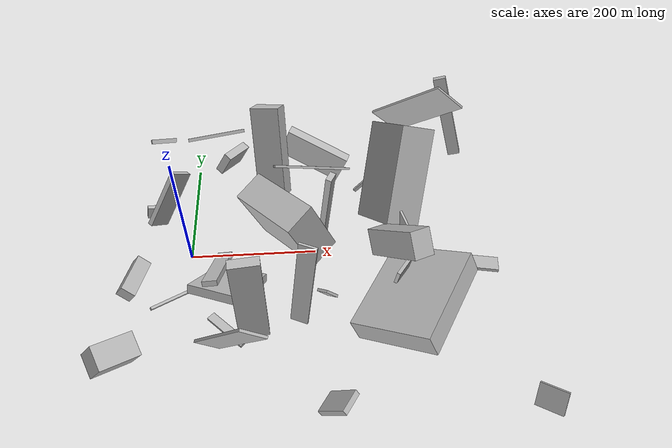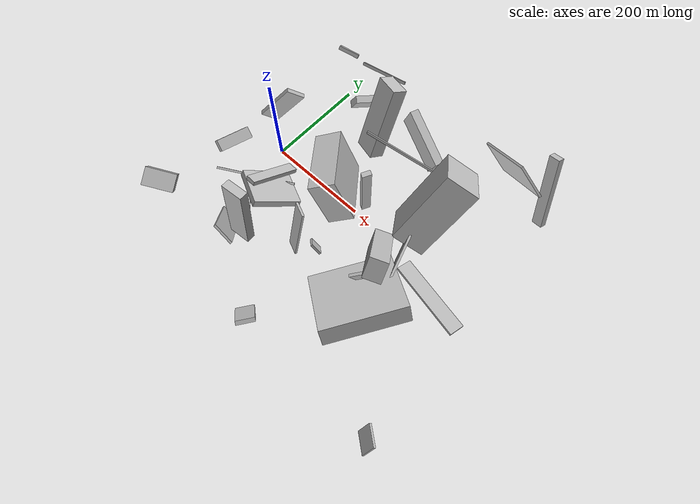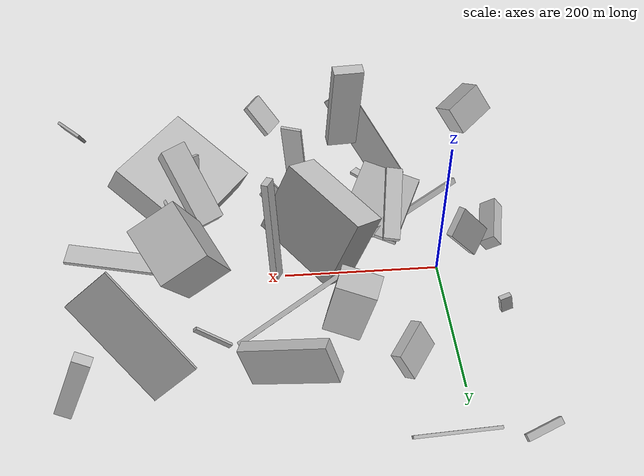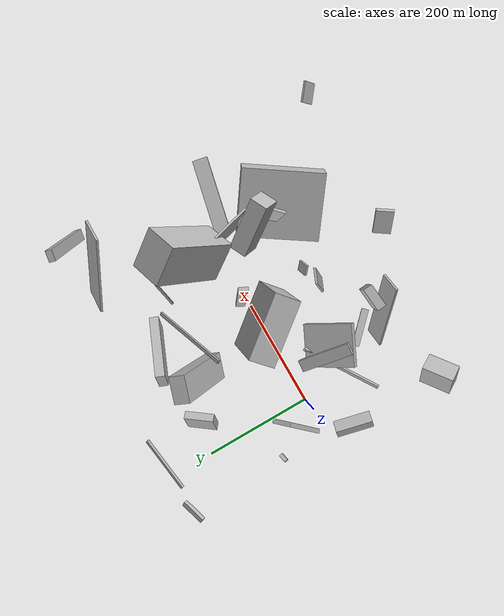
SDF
<sdf version="1.6">
 <world name="default">
  <scene>
   <sky><clouds><speed>12</speed></clouds></sky>
   <ambient>0.4 0.4 0.4 1</ambient>
   <background>0.7 0.7 0.7 1</background>
   <shadows>1</shadows>
  </scene>
  <gravity>0 0 -9.8066</gravity>
  <magnetic_field>6e-06 2.3e-05 -4.2e-05</magnetic_field>
  <physics default="0" name="default_physics" type="ode">
   <ode>
    <solver>
     <type>quick</type>
     <iters>10</iters>
     <sor>1.0</sor>
     <use_dynamic_moi_rescaling>0</use_dynamic_moi_rescaling>
    </solver>
    <constraints>
     <cfm>0</cfm>
     <erp>0.2</erp>
     <contact_max_correcting_vel>100</contact_max_correcting_vel>
     <contact_surface_layer>0.001</contact_surface_layer>
    </constraints>
   </ode>
   <max_step_size>0.004</max_step_size>
   <real_time_factor>1</real_time_factor>
   <real_time_update_rate>250</real_time_update_rate>
  </physics>
  <light name="sun" type="directional">
   <pose>0 0 10 0 0 0</pose>
   <diffuse>0.8 0.8 0.8 1</diffuse>
   <specular>0.2 0.2 0.2 1</specular>
   <attenuation>
    <range>1000</range>
    <constant>0.9</constant>
    <linear>0.01</linear>
    <quadratic>0.001</quadratic>
   </attenuation>
   <direction>-0.5 0.1 -0.9</direction>
  </light>
  <model name="building_1">
   <static>0</static>
   <pose>410.1766655089389 202.81658807472311 101.7610473603253 0.751700459458805 0.3752434939150048 -1.8534549909360527</pose>
   <link name="link">
    <gravity>0</gravity>
    <pose>0 0 33.0 0 0 0</pose>
    <collision name="collision"><geometry><box><size>4 145 66</size></box></geometry></collision>
    <visual name="visual">
     <cast_shadows>0</cast_shadows>
     <geometry><box><size>4 145 66</size></box></geometry>
     <material>
      <script>
       <uri>model://HANNAS_wall/materials/scripts</uri>
       <uri>model://HANNAS_wall/materials/textures</uri>
       <name>vrc/HANNAS_wall</name>
      </script>
     </material>
    </visual>
   </link>
  </model>
  <model name="building_2">
   <static>0</static>
   <pose>206.4595644968066 177.37334358911463 47.94452305633396 1.5395878755531411 -0.3615829813583825 2.779806486288705</pose>
   <link name="link">
    <gravity>0</gravity>
    <pose>0 0 8.5 0 0 0</pose>
    <collision name="collision"><geometry><box><size>113 55 17</size></box></geometry></collision>
    <visual name="visual">
     <cast_shadows>0</cast_shadows>
     <geometry><box><size>113 55 17</size></box></geometry>
     <material>
      <script>
       <uri>model://HANNAS_wall/materials/scripts</uri>
       <uri>model://HANNAS_wall/materials/textures</uri>
       <name>vrc/HANNAS_wall</name>
      </script>
     </material>
    </visual>
   </link>
  </model>
  <model name="building_3">
   <static>0</static>
   <pose>140.02040621811045 155.77633740275817 89.62797129582378 -0.4344583700434966 -1.1472960854905385 1.6490189733644838</pose>
   <link name="link">
    <gravity>0</gravity>
    <pose>0 0 14.5 0 0 0</pose>
    <collision name="collision"><geometry><box><size>150 48 29</size></box></geometry></collision>
    <visual name="visual">
     <cast_shadows>0</cast_shadows>
     <geometry><box><size>150 48 29</size></box></geometry>
     <material>
      <script>
       <uri>model://HANNAS_wall/materials/scripts</uri>
       <uri>model://HANNAS_wall/materials/textures</uri>
       <name>vrc/HANNAS_wall</name>
      </script>
     </material>
    </visual>
   </link>
  </model>
  <model name="building_4">
   <static>0</static>
   <pose>320.4477538518197 -103.05199190719752 57.67809142042819 0.9659858368067542 -1.2112348608841614 -1.6747936069642289</pose>
   <link name="link">
    <gravity>0</gravity>
    <pose>0 0 2.5 0 0 0</pose>
    <collision name="collision"><geometry><box><size>108 32 5</size></box></geometry></collision>
    <visual name="visual">
     <cast_shadows>0</cast_shadows>
     <geometry><box><size>108 32 5</size></box></geometry>
     <material>
      <script>
       <uri>model://HANNAS_wall/materials/scripts</uri>
       <uri>model://HANNAS_wall/materials/textures</uri>
       <name>vrc/HANNAS_wall</name>
      </script>
     </material>
    </visual>
   </link>
  </model>
  <model name="building_5">
   <static>0</static>
   <pose>311.68084722215303 86.59814180129734 94.12832271758646 0.7446950819506417 -0.896224018570689 1.2739654990725104</pose>
   <link name="link">
    <gravity>0</gravity>
    <pose>0 0 37.5 0 0 0</pose>
    <collision name="collision"><geometry><box><size>150 63 75</size></box></geometry></collision>
    <visual name="visual">
     <cast_shadows>0</cast_shadows>
     <geometry><box><size>150 63 75</size></box></geometry>
     <material>
      <script>
       <uri>model://HANNAS_wall/materials/scripts</uri>
       <uri>model://HANNAS_wall/materials/textures</uri>
       <name>vrc/HANNAS_wall</name>
      </script>
     </material>
    </visual>
   </link>
  </model>
  <model name="building_6">
   <static>0</static>
   <pose>40.029411137782404 -128.39249159855962 21.48075131810534 -0.20817195880316633 -1.556177250934765 2.5611073687964017</pose>
   <link name="link">
    <gravity>0</gravity>
    <pose>0 0 35.0 0 0 0</pose>
    <collision name="collision"><geometry><box><size>4 13 70</size></box></geometry></collision>
    <visual name="visual">
     <cast_shadows>0</cast_shadows>
     <geometry><box><size>4 13 70</size></box></geometry>
     <material>
      <script>
       <uri>model://HANNAS_wall/materials/scripts</uri>
       <uri>model://HANNAS_wall/materials/textures</uri>
       <name>vrc/HANNAS_wall</name>
      </script>
     </material>
    </visual>
   </link>
  </model>
  <model name="building_7">
   <static>0</static>
   <pose>56.73015071670308 -196.45990247015126 77.90717057149502 2.199697116662782 -0.33566573766555863 1.3617638254448001</pose>
   <link name="link">
    <gravity>0</gravity>
    <pose>0 0 20.0 0 0 0</pose>
    <collision name="collision"><geometry><box><size>4 145 40</size></box></geometry></collision>
    <visual name="visual">
     <cast_shadows>0</cast_shadows>
     <geometry><box><size>4 145 40</size></box></geometry>
     <material>
      <script>
       <uri>model://HANNAS_wall/materials/scripts</uri>
       <uri>model://HANNAS_wall/materials/textures</uri>
       <name>vrc/HANNAS_wall</name>
      </script>
     </material>
    </visual>
   </link>
  </model>
  <model name="building_8">
   <static>0</static>
   <pose>291.9219457160198 -199.82289337186964 51.11224072215849 1.386731385476837 -1.1134430895811633 2.7329680706579276</pose>
   <link name="link">
    <gravity>0</gravity>
    <pose>0 0 75.0 0 0 0</pose>
    <collision name="collision"><geometry><box><size>35 126 150</size></box></geometry></collision>
    <visual name="visual">
     <cast_shadows>0</cast_shadows>
     <geometry><box><size>35 126 150</size></box></geometry>
     <material>
      <script>
       <uri>model://HANNAS_wall/materials/scripts</uri>
       <uri>model://HANNAS_wall/materials/textures</uri>
       <name>vrc/HANNAS_wall</name>
      </script>
     </material>
    </visual>
   </link>
  </model>
  <model name="building_9">
   <static>0</static>
   <pose>-72.8227175996092 280.37058974282445 17.348477927814447 -2.4838180024402563 -0.22434401729041706 -2.811936929307097</pose>
   <link name="link">
    <gravity>0</gravity>
    <pose>0 0 4.0 0 0 0</pose>
    <collision name="collision"><geometry><box><size>46 9 8</size></box></geometry></collision>
    <visual name="visual">
     <cast_shadows>0</cast_shadows>
     <geometry><box><size>46 9 8</size></box></geometry>
     <material>
      <script>
       <uri>model://HANNAS_wall/materials/scripts</uri>
       <uri>model://HANNAS_wall/materials/textures</uri>
       <name>vrc/HANNAS_wall</name>
      </script>
     </material>
    </visual>
   </link>
  </model>
  <model name="building_10">
   <static>0</static>
   <pose>-74.39830758550104 -53.85644902332128 30.827618465846662 -3.001028212161163 -0.6583557725961992 2.841073868500483</pose>
   <link name="link">
    <gravity>0</gravity>
    <pose>0 0 9.5 0 0 0</pose>
    <collision name="collision"><geometry><box><size>23 68 19</size></box></geometry></collision>
    <visual name="visual">
     <cast_shadows>0</cast_shadows>
     <geometry><box><size>23 68 19</size></box></geometry>
     <material>
      <script>
       <uri>model://HANNAS_wall/materials/scripts</uri>
       <uri>model://HANNAS_wall/materials/textures</uri>
       <name>vrc/HANNAS_wall</name>
      </script>
     </material>
    </visual>
   </link>
  </model>
  <model name="building_11">
   <static>0</static>
   <pose>118.33916621269069 41.21335392567272 77.10700172031615 1.3894334169524971 -0.3544995005242855 0.7329239140828747</pose>
   <link name="link">
    <gravity>0</gravity>
    <pose>0 0 61.5 0 0 0</pose>
    <collision name="collision"><geometry><box><size>49 98 123</size></box></geometry></collision>
    <visual name="visual">
     <cast_shadows>0</cast_shadows>
     <geometry><box><size>49 98 123</size></box></geometry>
     <material>
      <script>
       <uri>model://HANNAS_wall/materials/scripts</uri>
       <uri>model://HANNAS_wall/materials/textures</uri>
       <name>vrc/HANNAS_wall</name>
      </script>
     </material>
    </visual>
   </link>
  </model>
  <model name="building_12">
   <static>0</static>
   <pose>101.18486912186852 -103.3536406107952 47.897972547975925 1.7274348405484574 -0.5093117737606114 -2.0885824008025375</pose>
   <link name="link">
    <gravity>0</gravity>
    <pose>0 0 39.5 0 0 0</pose>
    <collision name="collision"><geometry><box><size>93 13 79</size></box></geometry></collision>
    <visual name="visual">
     <cast_shadows>0</cast_shadows>
     <geometry><box><size>93 13 79</size></box></geometry>
     <material>
      <script>
       <uri>model://HANNAS_wall/materials/scripts</uri>
       <uri>model://HANNAS_wall/materials/textures</uri>
       <name>vrc/HANNAS_wall</name>
      </script>
     </material>
    </visual>
   </link>
  </model>
  <model name="building_13">
   <static>0</static>
   <pose>294.7332195591109 -37.49952797095264 67.18531787047023 0.8684036270239258 0.16247603672385613 0.4419379205668623</pose>
   <link name="link">
    <gravity>0</gravity>
    <pose>0 0 53.0 0 0 0</pose>
    <collision name="collision"><geometry><box><size>33 40 106</size></box></geometry></collision>
    <visual name="visual">
     <cast_shadows>0</cast_shadows>
     <geometry><box><size>33 40 106</size></box></geometry>
     <material>
      <script>
       <uri>model://HANNAS_wall/materials/scripts</uri>
       <uri>model://HANNAS_wall/materials/textures</uri>
       <name>vrc/HANNAS_wall</name>
      </script>
     </material>
    </visual>
   </link>
  </model>
  <model name="building_14">
   <static>0</static>
   <pose>221.3736865920556 6.308630984495318 90.49517857147227 1.4605573375541365 0.05211284212460683 -2.070695041275533</pose>
   <link name="link">
    <gravity>0</gravity>
    <pose>0 0 4.5 0 0 0</pose>
    <collision name="collision"><geometry><box><size>17 150 9</size></box></geometry></collision>
    <visual name="visual">
     <cast_shadows>0</cast_shadows>
     <geometry><box><size>17 150 9</size></box></geometry>
     <material>
      <script>
       <uri>model://HANNAS_wall/materials/scripts</uri>
       <uri>model://HANNAS_wall/materials/textures</uri>
       <name>vrc/HANNAS_wall</name>
      </script>
     </material>
    </visual>
   </link>
  </model>
  <model name="building_15">
   <static>0</static>
   <pose>203.6142091996626 122.25463227100008 69.8301415307585 0.49364237839310166 0.5679223689842848 2.225892388534747</pose>
   <link name="link">
    <gravity>0</gravity>
    <pose>0 0 2.0 0 0 0</pose>
    <collision name="collision"><geometry><box><size>6 150 4</size></box></geometry></collision>
    <visual name="visual">
     <cast_shadows>0</cast_shadows>
     <geometry><box><size>6 150 4</size></box></geometry>
     <material>
      <script>
       <uri>model://HANNAS_wall/materials/scripts</uri>
       <uri>model://HANNAS_wall/materials/textures</uri>
       <name>vrc/HANNAS_wall</name>
      </script>
     </material>
    </visual>
   </link>
  </model>
  <model name="building_16">
   <static>0</static>
   <pose>50.181570146301425 158.9498936225426 55.820216111224326 -1.9950455318157143 -1.0755203384988965 -0.2324146214717071</pose>
   <link name="link">
    <gravity>0</gravity>
    <pose>0 0 26.5 0 0 0</pose>
    <collision name="collision"><geometry><box><size>41 14 53</size></box></geometry></collision>
    <visual name="visual">
     <cast_shadows>0</cast_shadows>
     <geometry><box><size>41 14 53</size></box></geometry>
     <material>
      <script>
       <uri>model://HANNAS_wall/materials/scripts</uri>
       <uri>model://HANNAS_wall/materials/textures</uri>
       <name>vrc/HANNAS_wall</name>
      </script>
     </material>
    </visual>
   </link>
  </model>
  <model name="building_17">
   <static>0</static>
   <pose>209.9961445058392 -116.63216861856392 43.757064437038515 0.7910814051275935 -0.8406057621368179 -2.912479760437552</pose>
   <link name="link">
    <gravity>0</gravity>
    <pose>0 0 2.0 0 0 0</pose>
    <collision name="collision"><geometry><box><size>25 19 4</size></box></geometry></collision>
    <visual name="visual">
     <cast_shadows>0</cast_shadows>
     <geometry><box><size>25 19 4</size></box></geometry>
     <material>
      <script>
       <uri>model://HANNAS_wall/materials/scripts</uri>
       <uri>model://HANNAS_wall/materials/textures</uri>
       <name>vrc/HANNAS_wall</name>
      </script>
     </material>
    </visual>
   </link>
  </model>
  <model name="building_18">
   <static>0</static>
   <pose>297.6735596046923 125.34138264306367 32.49483947820881 1.6866058198011251 -0.7952646040385426 3.138701324303453</pose>
   <link name="link">
    <gravity>0</gravity>
    <pose>0 0 2.0 0 0 0</pose>
    <collision name="collision"><geometry><box><size>6 59 4</size></box></geometry></collision>
    <visual name="visual">
     <cast_shadows>0</cast_shadows>
     <geometry><box><size>6 59 4</size></box></geometry>
     <material>
      <script>
       <uri>model://HANNAS_wall/materials/scripts</uri>
       <uri>model://HANNAS_wall/materials/textures</uri>
       <name>vrc/HANNAS_wall</name>
      </script>
     </material>
    </visual>
   </link>
  </model>
  <model name="building_19">
   <static>0</static>
   <pose>107.7472707786414 -189.10518592710332 70.2514836512198 -0.015540531139245977 0.12044743077806301 1.6548470243667246</pose>
   <link name="link">
    <gravity>0</gravity>
    <pose>0 0 65.0 0 0 0</pose>
    <collision name="collision"><geometry><box><size>16 40 130</size></box></geometry></collision>
    <visual name="visual">
     <cast_shadows>0</cast_shadows>
     <geometry><box><size>16 40 130</size></box></geometry>
     <material>
      <script>
       <uri>model://HANNAS_wall/materials/scripts</uri>
       <uri>model://HANNAS_wall/materials/textures</uri>
       <name>vrc/HANNAS_wall</name>
      </script>
     </material>
    </visual>
   </link>
  </model>
  <model name="building_20">
   <static>0</static>
   <pose>361.30563329825435 -121.29421165351516 44.30576706570925 1.3486302131825656 -0.1854440218383157 -2.8157679816886256</pose>
   <link name="link">
    <gravity>0</gravity>
    <pose>0 0 75.0 0 0 0</pose>
    <collision name="collision"><geometry><box><size>4 39 150</size></box></geometry></collision>
    <visual name="visual">
     <cast_shadows>0</cast_shadows>
     <geometry><box><size>4 39 150</size></box></geometry>
     <material>
      <script>
       <uri>model://HANNAS_wall/materials/scripts</uri>
       <uri>model://HANNAS_wall/materials/textures</uri>
       <name>vrc/HANNAS_wall</name>
      </script>
     </material>
    </visual>
   </link>
  </model>
  <model name="building_21">
   <static>0</static>
   <pose>-19.067698387789925 34.79819982983669 99.26356593380018 1.4446014771789137 -0.6699688480961669 -2.2366186112975446</pose>
   <link name="link">
    <gravity>0</gravity>
    <pose>0 0 4.0 0 0 0</pose>
    <collision name="collision"><geometry><box><size>37 91 8</size></box></geometry></collision>
    <visual name="visual">
     <cast_shadows>0</cast_shadows>
     <geometry><box><size>37 91 8</size></box></geometry>
     <material>
      <script>
       <uri>model://HANNAS_wall/materials/scripts</uri>
       <uri>model://HANNAS_wall/materials/textures</uri>
       <name>vrc/HANNAS_wall</name>
      </script>
     </material>
    </visual>
   </link>
  </model>
  <model name="building_22">
   <static>0</static>
   <pose>412.9384768500327 -37.30090329302931 8.869317795848794 -2.9891838739544783 0.0328164972932273 2.9250484483021846</pose>
   <link name="link">
    <gravity>0</gravity>
    <pose>0 0 2.5 0 0 0</pose>
    <collision name="collision"><geometry><box><size>150 29 5</size></box></geometry></collision>
    <visual name="visual">
     <cast_shadows>0</cast_shadows>
     <geometry><box><size>150 29 5</size></box></geometry>
     <material>
      <script>
       <uri>model://HANNAS_wall/materials/scripts</uri>
       <uri>model://HANNAS_wall/materials/textures</uri>
       <name>vrc/HANNAS_wall</name>
      </script>
     </material>
    </visual>
   </link>
  </model>
  <model name="building_23">
   <static>0</static>
   <pose>58.61725067402129 -23.99780375658915 32.60788695311501 -1.0922838519226366 0.15013634293253506 3.062838676213223</pose>
   <link name="link">
    <gravity>0</gravity>
    <pose>0 0 50.0 0 0 0</pose>
    <collision name="collision"><geometry><box><size>22 8 100</size></box></geometry></collision>
    <visual name="visual">
     <cast_shadows>0</cast_shadows>
     <geometry><box><size>22 8 100</size></box></geometry>
     <material>
      <script>
       <uri>model://HANNAS_wall/materials/scripts</uri>
       <uri>model://HANNAS_wall/materials/textures</uri>
       <name>vrc/HANNAS_wall</name>
      </script>
     </material>
    </visual>
   </link>
  </model>
  <model name="building_24">
   <static>0</static>
   <pose>188.34392717834126 -129.4684972387225 78.32760286714888 -1.2655492058899969 -1.4051263277109223 0.8677984047014765</pose>
   <link name="link">
    <gravity>0</gravity>
    <pose>0 0 13.5 0 0 0</pose>
    <collision name="collision"><geometry><box><size>150 4 27</size></box></geometry></collision>
    <visual name="visual">
     <cast_shadows>0</cast_shadows>
     <geometry><box><size>150 4 27</size></box></geometry>
     <material>
      <script>
       <uri>model://HANNAS_wall/materials/scripts</uri>
       <uri>model://HANNAS_wall/materials/textures</uri>
       <name>vrc/HANNAS_wall</name>
      </script>
     </material>
    </visual>
   </link>
  </model>
  <model name="building_25">
   <static>0</static>
   <pose>451.35956722616436 225.2007318292479 83.49068121377536 2.131570390121174 -1.1788710262753355 2.3417148348884687</pose>
   <link name="link">
    <gravity>0</gravity>
    <pose>0 0 6.0 0 0 0</pose>
    <collision name="collision"><geometry><box><size>150 21 12</size></box></geometry></collision>
    <visual name="visual">
     <cast_shadows>0</cast_shadows>
     <geometry><box><size>150 21 12</size></box></geometry>
     <material>
      <script>
       <uri>model://HANNAS_wall/materials/scripts</uri>
       <uri>model://HANNAS_wall/materials/textures</uri>
       <name>vrc/HANNAS_wall</name>
      </script>
     </material>
    </visual>
   </link>
  </model>
  <model name="building_26">
   <static>0</static>
   <pose>-48.209054914748265 -207.02531823490594 81.02075017498841 0.9591906891172834 -0.9588145497554046 -0.4214110340576285</pose>
   <link name="link">
    <gravity>0</gravity>
    <pose>0 0 27.5 0 0 0</pose>
    <collision name="collision"><geometry><box><size>42 33 55</size></box></geometry></collision>
    <visual name="visual">
     <cast_shadows>0</cast_shadows>
     <geometry><box><size>42 33 55</size></box></geometry>
     <material>
      <script>
       <uri>model://HANNAS_wall/materials/scripts</uri>
       <uri>model://HANNAS_wall/materials/textures</uri>
       <name>vrc/HANNAS_wall</name>
      </script>
     </material>
    </visual>
   </link>
  </model>
  <model name="building_27">
   <static>0</static>
   <pose>196.95305716566034 -274.8211925443674 27.702704771680427 0.0642002867587708 -0.753567300992709 2.4965433351150947</pose>
   <link name="link">
    <gravity>0</gravity>
    <pose>0 0 25.0 0 0 0</pose>
    <collision name="collision"><geometry><box><size>8 33 50</size></box></geometry></collision>
    <visual name="visual">
     <cast_shadows>0</cast_shadows>
     <geometry><box><size>8 33 50</size></box></geometry>
     <material>
      <script>
       <uri>model://HANNAS_wall/materials/scripts</uri>
       <uri>model://HANNAS_wall/materials/textures</uri>
       <name>vrc/HANNAS_wall</name>
      </script>
     </material>
    </visual>
   </link>
  </model>
  <model name="building_28">
   <static>0</static>
   <pose>27.659268979837456 281.2746863301104 19.929672248451077 0.9359530173816782 -0.0812097086109817 0.11541370010276887</pose>
   <link name="link">
    <gravity>0</gravity>
    <pose>0 0 2.0 0 0 0</pose>
    <collision name="collision"><geometry><box><size>107 6 4</size></box></geometry></collision>
    <visual name="visual">
     <cast_shadows>0</cast_shadows>
     <geometry><box><size>107 6 4</size></box></geometry>
     <material>
      <script>
       <uri>model://HANNAS_wall/materials/scripts</uri>
       <uri>model://HANNAS_wall/materials/textures</uri>
       <name>vrc/HANNAS_wall</name>
      </script>
     </material>
    </visual>
   </link>
  </model>
  <model name="building_29">
   <static>0</static>
   <pose>-62.77027230318615 88.84514614810693 19.13796139261313 -0.21233212341285387 1.3595833717624166 -3.1242457675652044</pose>
   <link name="link">
    <gravity>0</gravity>
    <pose>0 0 7.5 0 0 0</pose>
    <collision name="collision"><geometry><box><size>23 7 15</size></box></geometry></collision>
    <visual name="visual">
     <cast_shadows>0</cast_shadows>
     <geometry><box><size>23 7 15</size></box></geometry>
     <material>
      <script>
       <uri>model://HANNAS_wall/materials/scripts</uri>
       <uri>model://HANNAS_wall/materials/textures</uri>
       <name>vrc/HANNAS_wall</name>
      </script>
     </material>
    </visual>
   </link>
  </model>
  <model name="building_30">
   <static>0</static>
   <pose>474.87056105344703 -277.09873795441456 23.731548058552693 1.2870906577201486 0.5702135522392197 0.7465625157942135</pose>
   <link name="link">
    <gravity>0</gravity>
    <pose>0 0 19.0 0 0 0</pose>
    <collision name="collision"><geometry><box><size>4 33 38</size></box></geometry></collision>
    <visual name="visual">
     <cast_shadows>0</cast_shadows>
     <geometry><box><size>4 33 38</size></box></geometry>
     <material>
      <script>
       <uri>model://HANNAS_wall/materials/scripts</uri>
       <uri>model://HANNAS_wall/materials/textures</uri>
       <name>vrc/HANNAS_wall</name>
      </script>
     </material>
    </visual>
   </link>
  </model>
  <model name="building_31">
   <static>0</static>
   <pose>82.98400214771627 -44.105469703288755 24.41125115481827 -1.434480497159426 -0.5112074253620211 2.071993381359037</pose>
   <link name="link">
    <gravity>0</gravity>
    <pose>0 0 75.0 0 0 0</pose>
    <collision name="collision"><geometry><box><size>4 8 150</size></box></geometry></collision>
    <visual name="visual">
     <cast_shadows>0</cast_shadows>
     <geometry><box><size>4 8 150</size></box></geometry>
     <material>
      <script>
       <uri>model://HANNAS_wall/materials/scripts</uri>
       <uri>model://HANNAS_wall/materials/textures</uri>
       <name>vrc/HANNAS_wall</name>
      </script>
     </material>
    </visual>
   </link>
  </model>
 </world>
</sdf>
